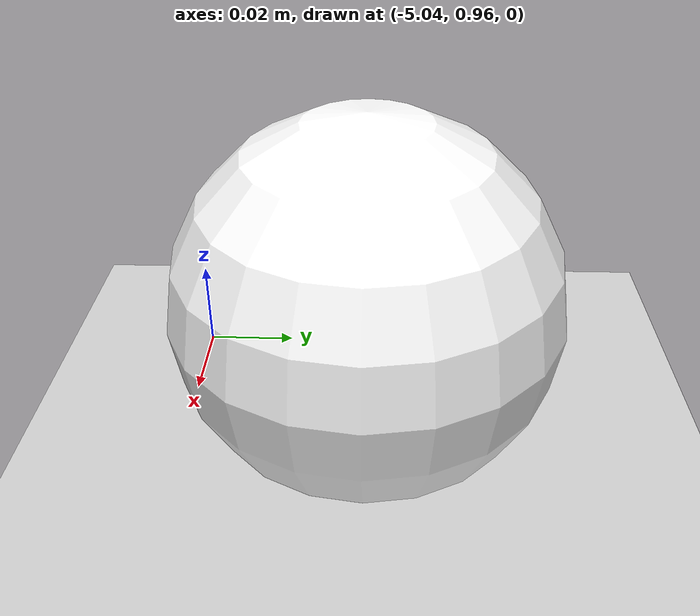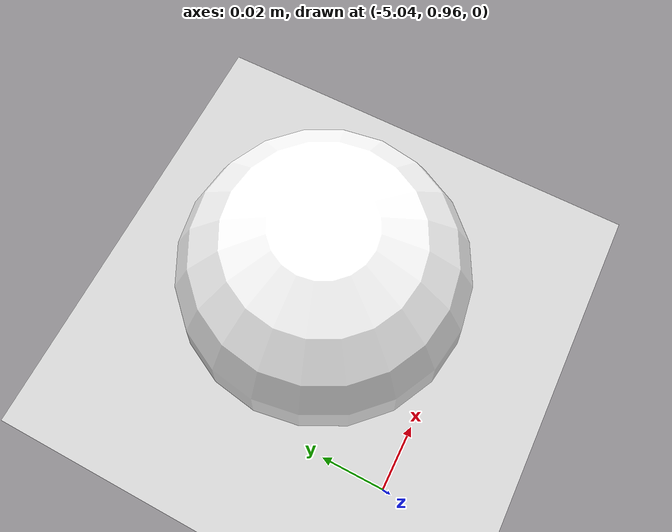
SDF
<?xml version="1.0" encoding="UTF-8"?>
<sdf version="1.4">

	<world name="default">

		<include>
			<uri>model://ground_plane</uri>
		</include>

		<include>
			<uri>model://sun</uri>
		</include>

		<include>
			<uri>model://cricket_ball</uri>
			<pose> -5 1 0 0 0 0 </pose>
		</include>

		<gui fullscreen='0'>
		 	<camera name='user_camera'>
				<pose> 4.927360 -4.376610 3.740080 0.000000 0.275643 2.356190 </pose>
				<view_controller>orbit</view_controller>
		  	</camera>
		</gui>

	</world>

</sdf>

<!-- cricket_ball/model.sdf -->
<sdf version="1.5">
  <model name="cricket_ball">
    <link name="link">
      <pose>0 0 0.0375 0 0 0</pose>
      <inertial>
        <mass>0.1467</mass>
        <inertia>
          <ixx>8.251875e-05</ixx>
          <ixy>0</ixy>
          <ixz>0</ixz>
          <iyy>8.251875e-05</iyy>
          <iyz>0</iyz>
          <izz>8.251875e-05</izz>
        </inertia>
      </inertial>

      <collision name="collision">
        <geometry>
          <sphere>
            <radius>0.0375</radius>
          </sphere>
        </geometry>
        <surface>
          <contact>
            <!-- Red Pine coefficients for longitudinal axis of the wood
                 according to:
                 http://www.fpl.fs.fed.us/documnts/fplgtr/fplgtr113/ch04.pdf -->
            <poissons_ratio>0.347</poissons_ratio>
            <elastic_modulus>8.8e+09</elastic_modulus>
            <ode>
              <kp>100000</kp>
              <kd>100</kd>
              <max_vel>100.0</max_vel>
              <min_depth>0.001</min_depth>
            </ode>
          </contact>
          <friction>
            <torsional>
              <coefficient>1.0</coefficient>
              <use_patch_radius>0</use_patch_radius>
              <surface_radius>0.01</surface_radius>
            </torsional>
          </friction>
        </surface>
      </collision>

      <visual name="visual">
        <geometry>
          <sphere>
            <radius>0.0375</radius>
          </sphere>
        </geometry>
        <material><diffuse>1 1 1 1</diffuse><specular>0.1 0.1 0.1 1</specular></material>
      </visual>

      <!-- approximate rolling friction -->
      <velocity_decay>
        <linear>0.00</linear>
        <angular>0.005</angular>
      </velocity_decay>
    </link>
  </model>
</sdf>
